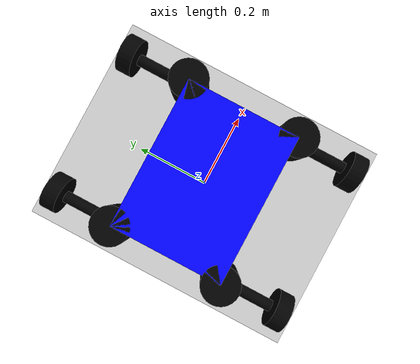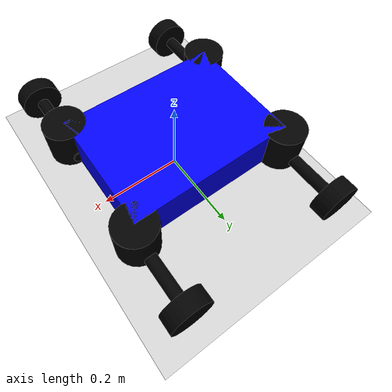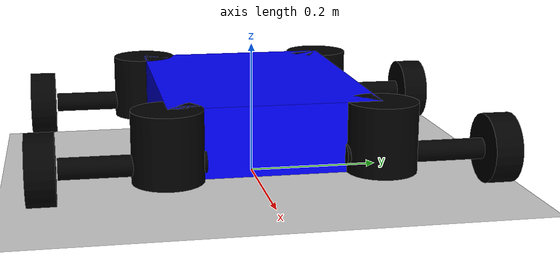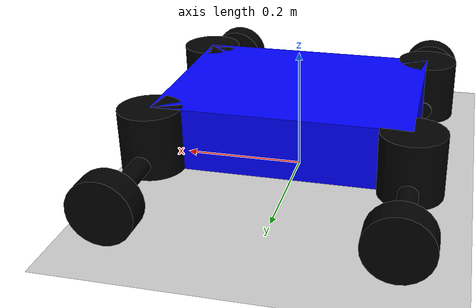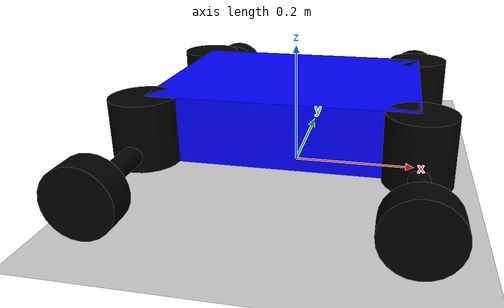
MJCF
<mujoco model="rover">

    <option gravity="0 0 -9.81" timestep="0.002"/>

    <worldbody>

        <light pos="0 0 10" dir="0 0 -1"/>

        <!-- pavimento -->
        <geom name="floor"
              type="plane"
              size="10 10 0.1"
              friction="1.0 0.01 0.01"
              rgba="0.8 0.8 0.8 1"/>

        <!-- corpo robot -->
        <body name="base" pos="0 0 0.1">

            <joint type="free"/>

            <geom type="box"
                  size="0.2 0.15 0.05"
                  mass="50"
                  rgba="0 0 1 1"/>

            <!-- asse sterzante sinistro -->
            <body name="steering_axes_L_link" pos="0.2 0.15 0">

                <joint name="steering_axes_L_joint"
                       type="hinge"
                       axis="0 0 1"/>

                <geom type="cylinder"
                      size="0.05 0.05"
                      friction="0.01 0.002 0.001"
                      condim="6"
                      rgba="0 0 0 1"/>
                <body name="axes_LF_link" pos="0 0.0475 -0.025" euler="90 0 0">
                    <geom type="cylinder"
                        mass="2.5"
                        size="0.015 0.1"
                        rgba="0 0 0 1"/>
                </body>
                    <!-- ruota sinistra front -->
                    <body name="left_wheel_f" pos="0.0 0.17 -0.025" euler="90 0 0">

                        <joint name="left_wheel_f_joint"
                            type="hinge"
                            axis="0 0 1"/>

                        <geom type="cylinder"
                            size="0.05 0.02"
                            mass="1"
                            friction="2 0.02 0.01"
                            condim="6"
                            rgba="0 0 0 1"/>

                    </body>

            </body>
            <!-- asse sterzante destro -->
            <body name="steering_axes_R_link" pos="0.2 -0.15 0">

                <joint name="steering_axes_R_joint"
                       type="hinge"
                       axis="0 0 1"/>

                <geom type="cylinder"
                      size="0.05 0.05"
                      friction="0.01 0.002 0.001"
                      condim="6"
                      rgba="0 0 0 1"/>
                <body name="axes_RF_link" pos="0 -0.0475 -0.025" euler="90 0 0">
                    <geom type="cylinder"
                        mass="2.5"
                        size="0.015 0.1"
                        rgba="0 0 0 1"/>
                </body>
            <!-- ruota destra front -->
                <body name="right_wheel_f" pos="0.0 -0.17 -0.025" euler="90 0 0">

                    <joint name="right_wheel_f_joint"
                        type="hinge"
                        axis="0 0 1"/>

                    <geom type="cylinder"
                        size="0.05 0.02"
                        friction="2 0.02 0.01"
                        mass="1"
                        condim="6"
                        rgba="0 0 0 1"/>

                </body>
            </body>
            <!-- asse sterzante sinistro back -->
            <body name="steering_axes_LB_link" pos="-0.2 0.15 0">

                <joint name="steering_axes_LB_joint"
                       type="hinge"
                       axis="0 0 1"/>

                <geom type="cylinder"
                      size="0.05 0.05"
                      friction="0.01 0.002 0.001"
                      condim="6"
                      rgba="0 0 0 1"/>

                <body name="axes_LB_link" pos="0 0.0475 -0.025" euler="90 0 0">
                    <geom type="cylinder"
                        mass="2.5"
                        size="0.015 0.1"
                        rgba="0 0 0 1"/>
                </body>
            <!-- ruota sinistra back -->
                <body name="left_wheel_b" pos="0 0.17 -0.025" euler="90 0 0">

                    <joint name="left_wheel_b_joint"
                        type="hinge"
                        axis="0 0 1"/>

                    <geom type="cylinder"
                        size="0.05 0.02"
                        friction="2 0.02 0.01"
                        condim="6"
                        mass="1"
                        rgba="0 0 0 1"/>

                </body>
            </body>
            <!-- asse sterzante sinistro back -->
            <body name="steering_axes_RB_link" pos="-0.2 -0.15 0">

                <joint name="steering_axes_RB_joint"
                       type="hinge"
                       axis="0 0 1"/>

                <geom type="cylinder"
                      size="0.05 0.05"
                      friction="0.01 0.002 0.001"
                      condim="6"
                      rgba="0 0 0 1"/>
                <body name="axes_RB_link" pos="0 -0.0475 -0.025" euler="90 0 0">
                    <geom type="cylinder"
                        mass="2.5"
                        size="0.015 0.1"
                        rgba="0 0 0 1"/>
                </body>
            <!-- ruota destra back -->
                <body name="right_wheel_b" pos="0 -0.17 -0.025" euler="90 0 0">

                    <joint name="right_wheel_b_joint"
                        type="hinge"
                        axis="0 0 1"/>

                    <geom type="cylinder"
                        size="0.05 0.02"
                        mass="1"
                        friction="2 0.02 0.01"
                        condim="6"
                        rgba="0 0 0 1"/>

                </body>
            </body>
        </body>

    </worldbody>

    <actuator>

        <motor joint="left_wheel_f_joint" ctrlrange="-5 5"/>
        <motor joint="right_wheel_f_joint" ctrlrange="-5 5"/>
        <motor joint="left_wheel_b_joint" ctrlrange="-5 5"/>
        <motor joint="right_wheel_b_joint" ctrlrange="-5 5"/>

    </actuator>

</mujoco>
